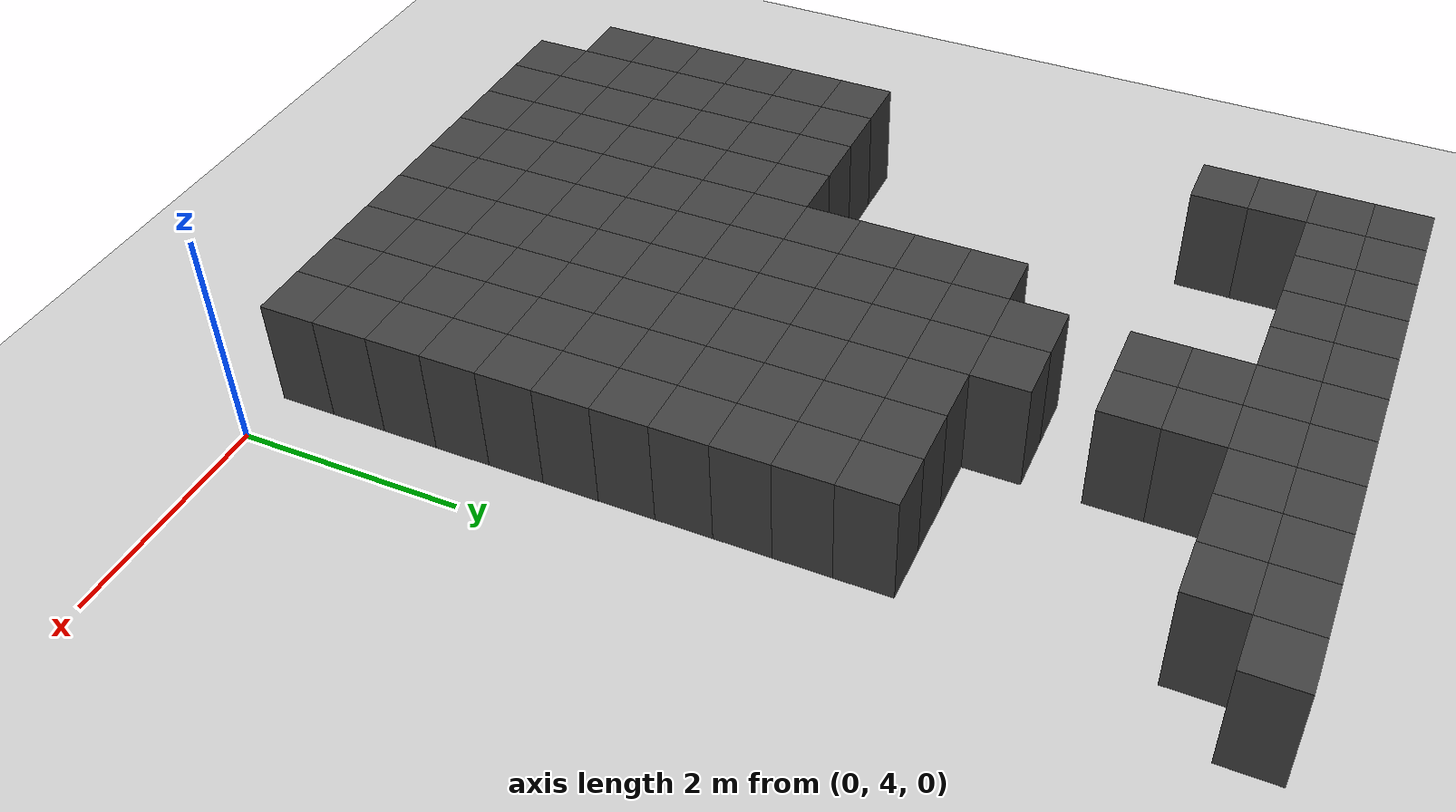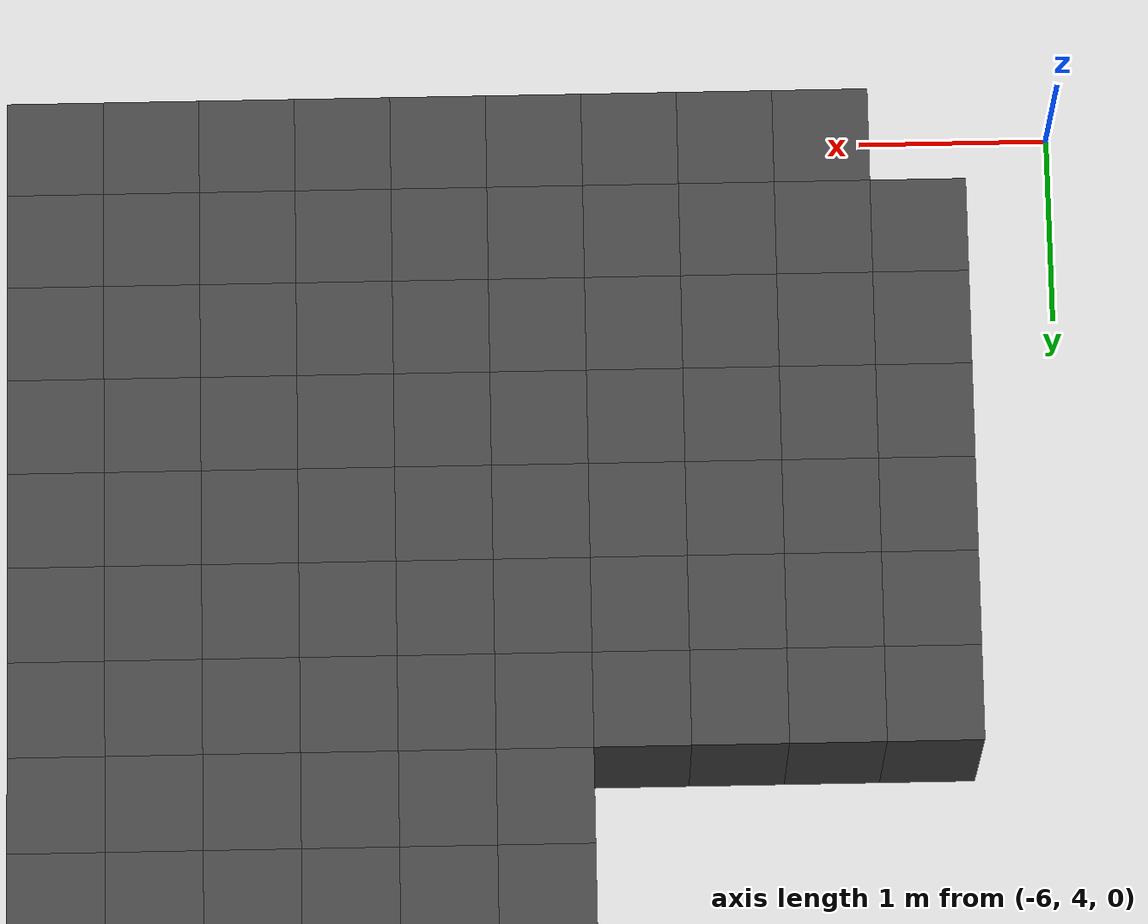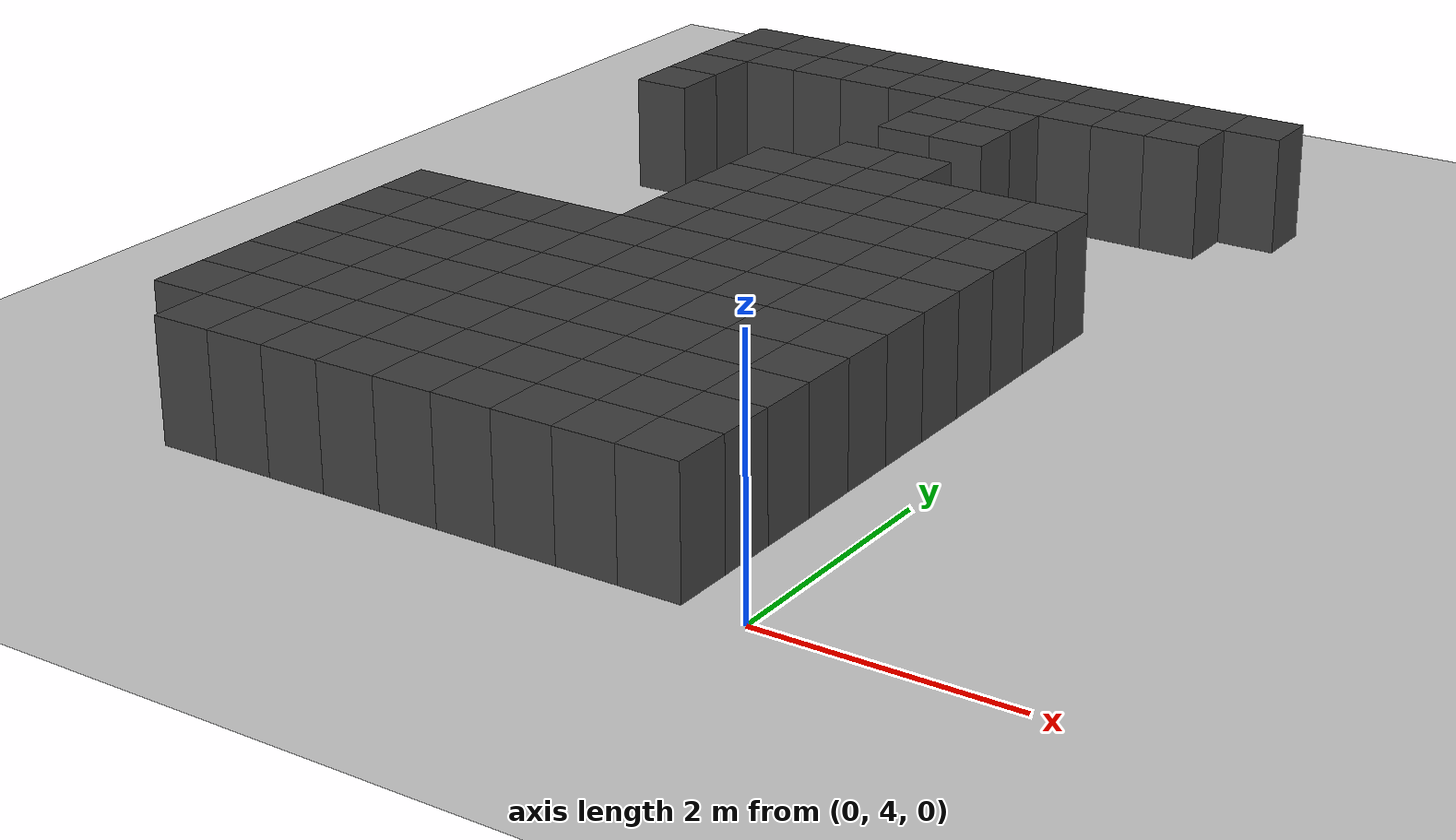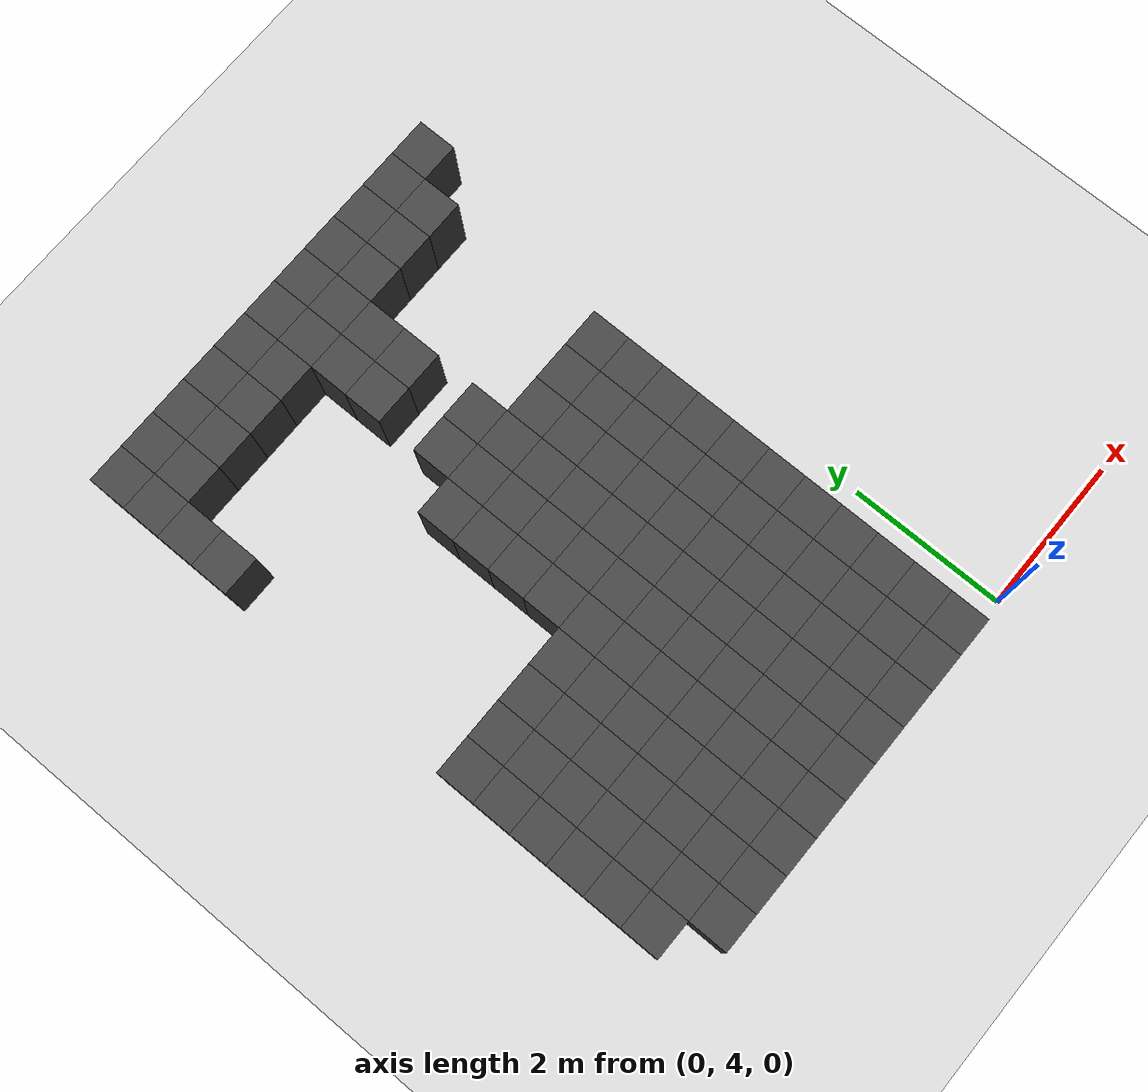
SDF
<sdf version="1.7">
 <world name="map_14547">
  <model name="ground_plane">
   <static>true</static>
   <link name="link">
    <collision name="collision">
     <geometry><plane><normal>0 0 1</normal><size>200 200</size></plane></geometry>
    </collision>
    <visual name="visual">
     <geometry><plane><normal>0 0 1</normal><size>200 200</size></plane></geometry>
     <material><ambient>0.8 0.8 0.8 1</ambient><diffuse>0.8 0.8 0.8 1</diffuse></material>
    </visual>
   </link>
  </model>
  <model name="maze_environment">
   <static>true</static>
   <link name="wall_14">
    <pose>-5.250 12.250 0.500 0 0 0</pose>
    <collision name="col"><geometry><box><size>0.5 0.5 1.0</size></box></geometry></collision>
    <visual name="vis">
     <geometry><box><size>0.5 0.5 1.0</size></box></geometry>
     <material><ambient>0.15 0.15 0.15 1</ambient><diffuse>0.25 0.25 0.25 1</diffuse></material>
    </visual>
   </link>
   <link name="wall_15">
    <pose>-4.750 12.250 0.500 0 0 0</pose>
    <collision name="col"><geometry><box><size>0.5 0.5 1.0</size></box></geometry></collision>
    <visual name="vis">
     <geometry><box><size>0.5 0.5 1.0</size></box></geometry>
     <material><ambient>0.15 0.15 0.15 1</ambient><diffuse>0.25 0.25 0.25 1</diffuse></material>
    </visual>
   </link>
   <link name="wall_16">
    <pose>-4.250 12.250 0.500 0 0 0</pose>
    <collision name="col"><geometry><box><size>0.5 0.5 1.0</size></box></geometry></collision>
    <visual name="vis">
     <geometry><box><size>0.5 0.5 1.0</size></box></geometry>
     <material><ambient>0.15 0.15 0.15 1</ambient><diffuse>0.25 0.25 0.25 1</diffuse></material>
    </visual>
   </link>
   <link name="wall_17">
    <pose>-3.750 12.250 0.500 0 0 0</pose>
    <collision name="col"><geometry><box><size>0.5 0.5 1.0</size></box></geometry></collision>
    <visual name="vis">
     <geometry><box><size>0.5 0.5 1.0</size></box></geometry>
     <material><ambient>0.15 0.15 0.15 1</ambient><diffuse>0.25 0.25 0.25 1</diffuse></material>
    </visual>
   </link>
   <link name="wall_18">
    <pose>-3.250 12.250 0.500 0 0 0</pose>
    <collision name="col"><geometry><box><size>0.5 0.5 1.0</size></box></geometry></collision>
    <visual name="vis">
     <geometry><box><size>0.5 0.5 1.0</size></box></geometry>
     <material><ambient>0.15 0.15 0.15 1</ambient><diffuse>0.25 0.25 0.25 1</diffuse></material>
    </visual>
   </link>
   <link name="wall_19">
    <pose>-2.750 12.250 0.500 0 0 0</pose>
    <collision name="col"><geometry><box><size>0.5 0.5 1.0</size></box></geometry></collision>
    <visual name="vis">
     <geometry><box><size>0.5 0.5 1.0</size></box></geometry>
     <material><ambient>0.15 0.15 0.15 1</ambient><diffuse>0.25 0.25 0.25 1</diffuse></material>
    </visual>
   </link>
   <link name="wall_20">
    <pose>-2.250 12.250 0.500 0 0 0</pose>
    <collision name="col"><geometry><box><size>0.5 0.5 1.0</size></box></geometry></collision>
    <visual name="vis">
     <geometry><box><size>0.5 0.5 1.0</size></box></geometry>
     <material><ambient>0.15 0.15 0.15 1</ambient><diffuse>0.25 0.25 0.25 1</diffuse></material>
    </visual>
   </link>
   <link name="wall_21">
    <pose>-1.750 12.250 0.500 0 0 0</pose>
    <collision name="col"><geometry><box><size>0.5 0.5 1.0</size></box></geometry></collision>
    <visual name="vis">
     <geometry><box><size>0.5 0.5 1.0</size></box></geometry>
     <material><ambient>0.15 0.15 0.15 1</ambient><diffuse>0.25 0.25 0.25 1</diffuse></material>
    </visual>
   </link>
   <link name="wall_22">
    <pose>-1.250 12.250 0.500 0 0 0</pose>
    <collision name="col"><geometry><box><size>0.5 0.5 1.0</size></box></geometry></collision>
    <visual name="vis">
     <geometry><box><size>0.5 0.5 1.0</size></box></geometry>
     <material><ambient>0.15 0.15 0.15 1</ambient><diffuse>0.25 0.25 0.25 1</diffuse></material>
    </visual>
   </link>
   <link name="wall_23">
    <pose>-0.750 12.250 0.500 0 0 0</pose>
    <collision name="col"><geometry><box><size>0.5 0.5 1.0</size></box></geometry></collision>
    <visual name="vis">
     <geometry><box><size>0.5 0.5 1.0</size></box></geometry>
     <material><ambient>0.15 0.15 0.15 1</ambient><diffuse>0.25 0.25 0.25 1</diffuse></material>
    </visual>
   </link>
   <link name="wall_24">
    <pose>-0.250 12.250 0.500 0 0 0</pose>
    <collision name="col"><geometry><box><size>0.5 0.5 1.0</size></box></geometry></collision>
    <visual name="vis">
     <geometry><box><size>0.5 0.5 1.0</size></box></geometry>
     <material><ambient>0.15 0.15 0.15 1</ambient><diffuse>0.25 0.25 0.25 1</diffuse></material>
    </visual>
   </link>
   <link name="wall_61">
    <pose>-5.250 11.750 0.500 0 0 0</pose>
    <collision name="col"><geometry><box><size>0.5 0.5 1.0</size></box></geometry></collision>
    <visual name="vis">
     <geometry><box><size>0.5 0.5 1.0</size></box></geometry>
     <material><ambient>0.15 0.15 0.15 1</ambient><diffuse>0.25 0.25 0.25 1</diffuse></material>
    </visual>
   </link>
   <link name="wall_62">
    <pose>-4.750 11.750 0.500 0 0 0</pose>
    <collision name="col"><geometry><box><size>0.5 0.5 1.0</size></box></geometry></collision>
    <visual name="vis">
     <geometry><box><size>0.5 0.5 1.0</size></box></geometry>
     <material><ambient>0.15 0.15 0.15 1</ambient><diffuse>0.25 0.25 0.25 1</diffuse></material>
    </visual>
   </link>
   <link name="wall_63">
    <pose>-4.250 11.750 0.500 0 0 0</pose>
    <collision name="col"><geometry><box><size>0.5 0.5 1.0</size></box></geometry></collision>
    <visual name="vis">
     <geometry><box><size>0.5 0.5 1.0</size></box></geometry>
     <material><ambient>0.15 0.15 0.15 1</ambient><diffuse>0.25 0.25 0.25 1</diffuse></material>
    </visual>
   </link>
   <link name="wall_64">
    <pose>-3.750 11.750 0.500 0 0 0</pose>
    <collision name="col"><geometry><box><size>0.5 0.5 1.0</size></box></geometry></collision>
    <visual name="vis">
     <geometry><box><size>0.5 0.5 1.0</size></box></geometry>
     <material><ambient>0.15 0.15 0.15 1</ambient><diffuse>0.25 0.25 0.25 1</diffuse></material>
    </visual>
   </link>
   <link name="wall_65">
    <pose>-3.250 11.750 0.500 0 0 0</pose>
    <collision name="col"><geometry><box><size>0.5 0.5 1.0</size></box></geometry></collision>
    <visual name="vis">
     <geometry><box><size>0.5 0.5 1.0</size></box></geometry>
     <material><ambient>0.15 0.15 0.15 1</ambient><diffuse>0.25 0.25 0.25 1</diffuse></material>
    </visual>
   </link>
   <link name="wall_66">
    <pose>-2.750 11.750 0.500 0 0 0</pose>
    <collision name="col"><geometry><box><size>0.5 0.5 1.0</size></box></geometry></collision>
    <visual name="vis">
     <geometry><box><size>0.5 0.5 1.0</size></box></geometry>
     <material><ambient>0.15 0.15 0.15 1</ambient><diffuse>0.25 0.25 0.25 1</diffuse></material>
    </visual>
   </link>
   <link name="wall_67">
    <pose>-2.250 11.750 0.500 0 0 0</pose>
    <collision name="col"><geometry><box><size>0.5 0.5 1.0</size></box></geometry></collision>
    <visual name="vis">
     <geometry><box><size>0.5 0.5 1.0</size></box></geometry>
     <material><ambient>0.15 0.15 0.15 1</ambient><diffuse>0.25 0.25 0.25 1</diffuse></material>
    </visual>
   </link>
   <link name="wall_68">
    <pose>-1.750 11.750 0.500 0 0 0</pose>
    <collision name="col"><geometry><box><size>0.5 0.5 1.0</size></box></geometry></collision>
    <visual name="vis">
     <geometry><box><size>0.5 0.5 1.0</size></box></geometry>
     <material><ambient>0.15 0.15 0.15 1</ambient><diffuse>0.25 0.25 0.25 1</diffuse></material>
    </visual>
   </link>
   <link name="wall_69">
    <pose>-1.250 11.750 0.500 0 0 0</pose>
    <collision name="col"><geometry><box><size>0.5 0.5 1.0</size></box></geometry></collision>
    <visual name="vis">
     <geometry><box><size>0.5 0.5 1.0</size></box></geometry>
     <material><ambient>0.15 0.15 0.15 1</ambient><diffuse>0.25 0.25 0.25 1</diffuse></material>
    </visual>
   </link>
   <link name="wall_70">
    <pose>-0.750 11.750 0.500 0 0 0</pose>
    <collision name="col"><geometry><box><size>0.5 0.5 1.0</size></box></geometry></collision>
    <visual name="vis">
     <geometry><box><size>0.5 0.5 1.0</size></box></geometry>
     <material><ambient>0.15 0.15 0.15 1</ambient><diffuse>0.25 0.25 0.25 1</diffuse></material>
    </visual>
   </link>
   <link name="wall_101">
    <pose>-5.250 11.250 0.500 0 0 0</pose>
    <collision name="col"><geometry><box><size>0.5 0.5 1.0</size></box></geometry></collision>
    <visual name="vis">
     <geometry><box><size>0.5 0.5 1.0</size></box></geometry>
     <material><ambient>0.15 0.15 0.15 1</ambient><diffuse>0.25 0.25 0.25 1</diffuse></material>
    </visual>
   </link>
   <link name="wall_102">
    <pose>-2.750 11.250 0.500 0 0 0</pose>
    <collision name="col"><geometry><box><size>0.5 0.5 1.0</size></box></geometry></collision>
    <visual name="vis">
     <geometry><box><size>0.5 0.5 1.0</size></box></geometry>
     <material><ambient>0.15 0.15 0.15 1</ambient><diffuse>0.25 0.25 0.25 1</diffuse></material>
    </visual>
   </link>
   <link name="wall_103">
    <pose>-2.250 11.250 0.500 0 0 0</pose>
    <collision name="col"><geometry><box><size>0.5 0.5 1.0</size></box></geometry></collision>
    <visual name="vis">
     <geometry><box><size>0.5 0.5 1.0</size></box></geometry>
     <material><ambient>0.15 0.15 0.15 1</ambient><diffuse>0.25 0.25 0.25 1</diffuse></material>
    </visual>
   </link>
   <link name="wall_133">
    <pose>-5.250 10.750 0.500 0 0 0</pose>
    <collision name="col"><geometry><box><size>0.5 0.5 1.0</size></box></geometry></collision>
    <visual name="vis">
     <geometry><box><size>0.5 0.5 1.0</size></box></geometry>
     <material><ambient>0.15 0.15 0.15 1</ambient><diffuse>0.25 0.25 0.25 1</diffuse></material>
    </visual>
   </link>
   <link name="wall_134">
    <pose>-2.750 10.750 0.500 0 0 0</pose>
    <collision name="col"><geometry><box><size>0.5 0.5 1.0</size></box></geometry></collision>
    <visual name="vis">
     <geometry><box><size>0.5 0.5 1.0</size></box></geometry>
     <material><ambient>0.15 0.15 0.15 1</ambient><diffuse>0.25 0.25 0.25 1</diffuse></material>
    </visual>
   </link>
   <link name="wall_135">
    <pose>-2.250 10.750 0.500 0 0 0</pose>
    <collision name="col"><geometry><box><size>0.5 0.5 1.0</size></box></geometry></collision>
    <visual name="vis">
     <geometry><box><size>0.5 0.5 1.0</size></box></geometry>
     <material><ambient>0.15 0.15 0.15 1</ambient><diffuse>0.25 0.25 0.25 1</diffuse></material>
    </visual>
   </link>
   <link name="wall_194">
    <pose>-2.750 9.750 0.500 0 0 0</pose>
    <collision name="col"><geometry><box><size>0.5 0.5 1.0</size></box></geometry></collision>
    <visual name="vis">
     <geometry><box><size>0.5 0.5 1.0</size></box></geometry>
     <material><ambient>0.15 0.15 0.15 1</ambient><diffuse>0.25 0.25 0.25 1</diffuse></material>
    </visual>
   </link>
   <link name="wall_195">
    <pose>-2.250 9.750 0.500 0 0 0</pose>
    <collision name="col"><geometry><box><size>0.5 0.5 1.0</size></box></geometry></collision>
    <visual name="vis">
     <geometry><box><size>0.5 0.5 1.0</size></box></geometry>
     <material><ambient>0.15 0.15 0.15 1</ambient><diffuse>0.25 0.25 0.25 1</diffuse></material>
    </visual>
   </link>
   <link name="wall_223">
    <pose>-3.250 9.250 0.500 0 0 0</pose>
    <collision name="col"><geometry><box><size>0.5 0.5 1.0</size></box></geometry></collision>
    <visual name="vis">
     <geometry><box><size>0.5 0.5 1.0</size></box></geometry>
     <material><ambient>0.15 0.15 0.15 1</ambient><diffuse>0.25 0.25 0.25 1</diffuse></material>
    </visual>
   </link>
   <link name="wall_224">
    <pose>-2.750 9.250 0.500 0 0 0</pose>
    <collision name="col"><geometry><box><size>0.5 0.5 1.0</size></box></geometry></collision>
    <visual name="vis">
     <geometry><box><size>0.5 0.5 1.0</size></box></geometry>
     <material><ambient>0.15 0.15 0.15 1</ambient><diffuse>0.25 0.25 0.25 1</diffuse></material>
    </visual>
   </link>
   <link name="wall_225">
    <pose>-2.250 9.250 0.500 0 0 0</pose>
    <collision name="col"><geometry><box><size>0.5 0.5 1.0</size></box></geometry></collision>
    <visual name="vis">
     <geometry><box><size>0.5 0.5 1.0</size></box></geometry>
     <material><ambient>0.15 0.15 0.15 1</ambient><diffuse>0.25 0.25 0.25 1</diffuse></material>
    </visual>
   </link>
   <link name="wall_226">
    <pose>-1.750 9.250 0.500 0 0 0</pose>
    <collision name="col"><geometry><box><size>0.5 0.5 1.0</size></box></geometry></collision>
    <visual name="vis">
     <geometry><box><size>0.5 0.5 1.0</size></box></geometry>
     <material><ambient>0.15 0.15 0.15 1</ambient><diffuse>0.25 0.25 0.25 1</diffuse></material>
    </visual>
   </link>
   <link name="wall_227">
    <pose>-1.250 9.250 0.500 0 0 0</pose>
    <collision name="col"><geometry><box><size>0.5 0.5 1.0</size></box></geometry></collision>
    <visual name="vis">
     <geometry><box><size>0.5 0.5 1.0</size></box></geometry>
     <material><ambient>0.15 0.15 0.15 1</ambient><diffuse>0.25 0.25 0.25 1</diffuse></material>
    </visual>
   </link>
   <link name="wall_228">
    <pose>-0.750 9.250 0.500 0 0 0</pose>
    <collision name="col"><geometry><box><size>0.5 0.5 1.0</size></box></geometry></collision>
    <visual name="vis">
     <geometry><box><size>0.5 0.5 1.0</size></box></geometry>
     <material><ambient>0.15 0.15 0.15 1</ambient><diffuse>0.25 0.25 0.25 1</diffuse></material>
    </visual>
   </link>
   <link name="wall_253">
    <pose>-3.250 8.750 0.500 0 0 0</pose>
    <collision name="col"><geometry><box><size>0.5 0.5 1.0</size></box></geometry></collision>
    <visual name="vis">
     <geometry><box><size>0.5 0.5 1.0</size></box></geometry>
     <material><ambient>0.15 0.15 0.15 1</ambient><diffuse>0.25 0.25 0.25 1</diffuse></material>
    </visual>
   </link>
   <link name="wall_254">
    <pose>-2.750 8.750 0.500 0 0 0</pose>
    <collision name="col"><geometry><box><size>0.5 0.5 1.0</size></box></geometry></collision>
    <visual name="vis">
     <geometry><box><size>0.5 0.5 1.0</size></box></geometry>
     <material><ambient>0.15 0.15 0.15 1</ambient><diffuse>0.25 0.25 0.25 1</diffuse></material>
    </visual>
   </link>
   <link name="wall_255">
    <pose>-2.250 8.750 0.500 0 0 0</pose>
    <collision name="col"><geometry><box><size>0.5 0.5 1.0</size></box></geometry></collision>
    <visual name="vis">
     <geometry><box><size>0.5 0.5 1.0</size></box></geometry>
     <material><ambient>0.15 0.15 0.15 1</ambient><diffuse>0.25 0.25 0.25 1</diffuse></material>
    </visual>
   </link>
   <link name="wall_256">
    <pose>-1.750 8.750 0.500 0 0 0</pose>
    <collision name="col"><geometry><box><size>0.5 0.5 1.0</size></box></geometry></collision>
    <visual name="vis">
     <geometry><box><size>0.5 0.5 1.0</size></box></geometry>
     <material><ambient>0.15 0.15 0.15 1</ambient><diffuse>0.25 0.25 0.25 1</diffuse></material>
    </visual>
   </link>
   <link name="wall_257">
    <pose>-1.250 8.750 0.500 0 0 0</pose>
    <collision name="col"><geometry><box><size>0.5 0.5 1.0</size></box></geometry></collision>
    <visual name="vis">
     <geometry><box><size>0.5 0.5 1.0</size></box></geometry>
     <material><ambient>0.15 0.15 0.15 1</ambient><diffuse>0.25 0.25 0.25 1</diffuse></material>
    </visual>
   </link>
   <link name="wall_258">
    <pose>-0.750 8.750 0.500 0 0 0</pose>
    <collision name="col"><geometry><box><size>0.5 0.5 1.0</size></box></geometry></collision>
    <visual name="vis">
     <geometry><box><size>0.5 0.5 1.0</size></box></geometry>
     <material><ambient>0.15 0.15 0.15 1</ambient><diffuse>0.25 0.25 0.25 1</diffuse></material>
    </visual>
   </link>
   <link name="wall_275">
    <pose>-3.250 8.250 0.500 0 0 0</pose>
    <collision name="col"><geometry><box><size>0.5 0.5 1.0</size></box></geometry></collision>
    <visual name="vis">
     <geometry><box><size>0.5 0.5 1.0</size></box></geometry>
     <material><ambient>0.15 0.15 0.15 1</ambient><diffuse>0.25 0.25 0.25 1</diffuse></material>
    </visual>
   </link>
   <link name="wall_276">
    <pose>-2.750 8.250 0.500 0 0 0</pose>
    <collision name="col"><geometry><box><size>0.5 0.5 1.0</size></box></geometry></collision>
    <visual name="vis">
     <geometry><box><size>0.5 0.5 1.0</size></box></geometry>
     <material><ambient>0.15 0.15 0.15 1</ambient><diffuse>0.25 0.25 0.25 1</diffuse></material>
    </visual>
   </link>
   <link name="wall_277">
    <pose>-2.250 8.250 0.500 0 0 0</pose>
    <collision name="col"><geometry><box><size>0.5 0.5 1.0</size></box></geometry></collision>
    <visual name="vis">
     <geometry><box><size>0.5 0.5 1.0</size></box></geometry>
     <material><ambient>0.15 0.15 0.15 1</ambient><diffuse>0.25 0.25 0.25 1</diffuse></material>
    </visual>
   </link>
   <link name="wall_278">
    <pose>-1.750 8.250 0.500 0 0 0</pose>
    <collision name="col"><geometry><box><size>0.5 0.5 1.0</size></box></geometry></collision>
    <visual name="vis">
     <geometry><box><size>0.5 0.5 1.0</size></box></geometry>
     <material><ambient>0.15 0.15 0.15 1</ambient><diffuse>0.25 0.25 0.25 1</diffuse></material>
    </visual>
   </link>
   <link name="wall_279">
    <pose>-1.250 8.250 0.500 0 0 0</pose>
    <collision name="col"><geometry><box><size>0.5 0.5 1.0</size></box></geometry></collision>
    <visual name="vis">
     <geometry><box><size>0.5 0.5 1.0</size></box></geometry>
     <material><ambient>0.15 0.15 0.15 1</ambient><diffuse>0.25 0.25 0.25 1</diffuse></material>
    </visual>
   </link>
   <link name="wall_280">
    <pose>-0.750 8.250 0.500 0 0 0</pose>
    <collision name="col"><geometry><box><size>0.5 0.5 1.0</size></box></geometry></collision>
    <visual name="vis">
     <geometry><box><size>0.5 0.5 1.0</size></box></geometry>
     <material><ambient>0.15 0.15 0.15 1</ambient><diffuse>0.25 0.25 0.25 1</diffuse></material>
    </visual>
   </link>
   <link name="wall_294">
    <pose>-3.250 7.750 0.500 0 0 0</pose>
    <collision name="col"><geometry><box><size>0.5 0.5 1.0</size></box></geometry></collision>
    <visual name="vis">
     <geometry><box><size>0.5 0.5 1.0</size></box></geometry>
     <material><ambient>0.15 0.15 0.15 1</ambient><diffuse>0.25 0.25 0.25 1</diffuse></material>
    </visual>
   </link>
   <link name="wall_295">
    <pose>-2.750 7.750 0.500 0 0 0</pose>
    <collision name="col"><geometry><box><size>0.5 0.5 1.0</size></box></geometry></collision>
    <visual name="vis">
     <geometry><box><size>0.5 0.5 1.0</size></box></geometry>
     <material><ambient>0.15 0.15 0.15 1</ambient><diffuse>0.25 0.25 0.25 1</diffuse></material>
    </visual>
   </link>
   <link name="wall_296">
    <pose>-2.250 7.750 0.500 0 0 0</pose>
    <collision name="col"><geometry><box><size>0.5 0.5 1.0</size></box></geometry></collision>
    <visual name="vis">
     <geometry><box><size>0.5 0.5 1.0</size></box></geometry>
     <material><ambient>0.15 0.15 0.15 1</ambient><diffuse>0.25 0.25 0.25 1</diffuse></material>
    </visual>
   </link>
   <link name="wall_297">
    <pose>-1.750 7.750 0.500 0 0 0</pose>
    <collision name="col"><geometry><box><size>0.5 0.5 1.0</size></box></geometry></collision>
    <visual name="vis">
     <geometry><box><size>0.5 0.5 1.0</size></box></geometry>
     <material><ambient>0.15 0.15 0.15 1</ambient><diffuse>0.25 0.25 0.25 1</diffuse></material>
    </visual>
   </link>
   <link name="wall_298">
    <pose>-1.250 7.750 0.500 0 0 0</pose>
    <collision name="col"><geometry><box><size>0.5 0.5 1.0</size></box></geometry></collision>
    <visual name="vis">
     <geometry><box><size>0.5 0.5 1.0</size></box></geometry>
     <material><ambient>0.15 0.15 0.15 1</ambient><diffuse>0.25 0.25 0.25 1</diffuse></material>
    </visual>
   </link>
   <link name="wall_299">
    <pose>-0.750 7.750 0.500 0 0 0</pose>
    <collision name="col"><geometry><box><size>0.5 0.5 1.0</size></box></geometry></collision>
    <visual name="vis">
     <geometry><box><size>0.5 0.5 1.0</size></box></geometry>
     <material><ambient>0.15 0.15 0.15 1</ambient><diffuse>0.25 0.25 0.25 1</diffuse></material>
    </visual>
   </link>
   <link name="wall_318">
    <pose>-5.250 7.250 0.500 0 0 0</pose>
    <collision name="col"><geometry><box><size>0.5 0.5 1.0</size></box></geometry></collision>
    <visual name="vis">
     <geometry><box><size>0.5 0.5 1.0</size></box></geometry>
     <material><ambient>0.15 0.15 0.15 1</ambient><diffuse>0.25 0.25 0.25 1</diffuse></material>
    </visual>
   </link>
   <link name="wall_319">
    <pose>-4.750 7.250 0.500 0 0 0</pose>
    <collision name="col"><geometry><box><size>0.5 0.5 1.0</size></box></geometry></collision>
    <visual name="vis">
     <geometry><box><size>0.5 0.5 1.0</size></box></geometry>
     <material><ambient>0.15 0.15 0.15 1</ambient><diffuse>0.25 0.25 0.25 1</diffuse></material>
    </visual>
   </link>
   <link name="wall_320">
    <pose>-4.250 7.250 0.500 0 0 0</pose>
    <collision name="col"><geometry><box><size>0.5 0.5 1.0</size></box></geometry></collision>
    <visual name="vis">
     <geometry><box><size>0.5 0.5 1.0</size></box></geometry>
     <material><ambient>0.15 0.15 0.15 1</ambient><diffuse>0.25 0.25 0.25 1</diffuse></material>
    </visual>
   </link>
   <link name="wall_321">
    <pose>-3.750 7.250 0.500 0 0 0</pose>
    <collision name="col"><geometry><box><size>0.5 0.5 1.0</size></box></geometry></collision>
    <visual name="vis">
     <geometry><box><size>0.5 0.5 1.0</size></box></geometry>
     <material><ambient>0.15 0.15 0.15 1</ambient><diffuse>0.25 0.25 0.25 1</diffuse></material>
    </visual>
   </link>
   <link name="wall_322">
    <pose>-3.250 7.250 0.500 0 0 0</pose>
    <collision name="col"><geometry><box><size>0.5 0.5 1.0</size></box></geometry></collision>
    <visual name="vis">
     <geometry><box><size>0.5 0.5 1.0</size></box></geometry>
     <material><ambient>0.15 0.15 0.15 1</ambient><diffuse>0.25 0.25 0.25 1</diffuse></material>
    </visual>
   </link>
   <link name="wall_323">
    <pose>-2.750 7.250 0.500 0 0 0</pose>
    <collision name="col"><geometry><box><size>0.5 0.5 1.0</size></box></geometry></collision>
    <visual name="vis">
     <geometry><box><size>0.5 0.5 1.0</size></box></geometry>
     <material><ambient>0.15 0.15 0.15 1</ambient><diffuse>0.25 0.25 0.25 1</diffuse></material>
    </visual>
   </link>
   <link name="wall_324">
    <pose>-2.250 7.250 0.500 0 0 0</pose>
    <collision name="col"><geometry><box><size>0.5 0.5 1.0</size></box></geometry></collision>
    <visual name="vis">
     <geometry><box><size>0.5 0.5 1.0</size></box></geometry>
     <material><ambient>0.15 0.15 0.15 1</ambient><diffuse>0.25 0.25 0.25 1</diffuse></material>
    </visual>
   </link>
   <link name="wall_325">
    <pose>-1.750 7.250 0.500 0 0 0</pose>
    <collision name="col"><geometry><box><size>0.5 0.5 1.0</size></box></geometry></collision>
    <visual name="vis">
     <geometry><box><size>0.5 0.5 1.0</size></box></geometry>
     <material><ambient>0.15 0.15 0.15 1</ambient><diffuse>0.25 0.25 0.25 1</diffuse></material>
    </visual>
   </link>
   <link name="wall_326">
    <pose>-1.250 7.250 0.500 0 0 0</pose>
    <collision name="col"><geometry><box><size>0.5 0.5 1.0</size></box></geometry></collision>
    <visual name="vis">
     <geometry><box><size>0.5 0.5 1.0</size></box></geometry>
     <material><ambient>0.15 0.15 0.15 1</ambient><diffuse>0.25 0.25 0.25 1</diffuse></material>
    </visual>
   </link>
   <link name="wall_327">
    <pose>-0.750 7.250 0.500 0 0 0</pose>
    <collision name="col"><geometry><box><size>0.5 0.5 1.0</size></box></geometry></collision>
    <visual name="vis">
     <geometry><box><size>0.5 0.5 1.0</size></box></geometry>
     <material><ambient>0.15 0.15 0.15 1</ambient><diffuse>0.25 0.25 0.25 1</diffuse></material>
    </visual>
   </link>
   <link name="wall_342">
    <pose>-5.250 6.750 0.500 0 0 0</pose>
    <collision name="col"><geometry><box><size>0.5 0.5 1.0</size></box></geometry></collision>
    <visual name="vis">
     <geometry><box><size>0.5 0.5 1.0</size></box></geometry>
     <material><ambient>0.15 0.15 0.15 1</ambient><diffuse>0.25 0.25 0.25 1</diffuse></material>
    </visual>
   </link>
   <link name="wall_343">
    <pose>-4.750 6.750 0.500 0 0 0</pose>
    <collision name="col"><geometry><box><size>0.5 0.5 1.0</size></box></geometry></collision>
    <visual name="vis">
     <geometry><box><size>0.5 0.5 1.0</size></box></geometry>
     <material><ambient>0.15 0.15 0.15 1</ambient><diffuse>0.25 0.25 0.25 1</diffuse></material>
    </visual>
   </link>
   <link name="wall_344">
    <pose>-4.250 6.750 0.500 0 0 0</pose>
    <collision name="col"><geometry><box><size>0.5 0.5 1.0</size></box></geometry></collision>
    <visual name="vis">
     <geometry><box><size>0.5 0.5 1.0</size></box></geometry>
     <material><ambient>0.15 0.15 0.15 1</ambient><diffuse>0.25 0.25 0.25 1</diffuse></material>
    </visual>
   </link>
   <link name="wall_345">
    <pose>-3.750 6.750 0.500 0 0 0</pose>
    <collision name="col"><geometry><box><size>0.5 0.5 1.0</size></box></geometry></collision>
    <visual name="vis">
     <geometry><box><size>0.5 0.5 1.0</size></box></geometry>
     <material><ambient>0.15 0.15 0.15 1</ambient><diffuse>0.25 0.25 0.25 1</diffuse></material>
    </visual>
   </link>
   <link name="wall_346">
    <pose>-3.250 6.750 0.500 0 0 0</pose>
    <collision name="col"><geometry><box><size>0.5 0.5 1.0</size></box></geometry></collision>
    <visual name="vis">
     <geometry><box><size>0.5 0.5 1.0</size></box></geometry>
     <material><ambient>0.15 0.15 0.15 1</ambient><diffuse>0.25 0.25 0.25 1</diffuse></material>
    </visual>
   </link>
   <link name="wall_347">
    <pose>-2.750 6.750 0.500 0 0 0</pose>
    <collision name="col"><geometry><box><size>0.5 0.5 1.0</size></box></geometry></collision>
    <visual name="vis">
     <geometry><box><size>0.5 0.5 1.0</size></box></geometry>
     <material><ambient>0.15 0.15 0.15 1</ambient><diffuse>0.25 0.25 0.25 1</diffuse></material>
    </visual>
   </link>
   <link name="wall_348">
    <pose>-2.250 6.750 0.500 0 0 0</pose>
    <collision name="col"><geometry><box><size>0.5 0.5 1.0</size></box></geometry></collision>
    <visual name="vis">
     <geometry><box><size>0.5 0.5 1.0</size></box></geometry>
     <material><ambient>0.15 0.15 0.15 1</ambient><diffuse>0.25 0.25 0.25 1</diffuse></material>
    </visual>
   </link>
   <link name="wall_349">
    <pose>-1.750 6.750 0.500 0 0 0</pose>
    <collision name="col"><geometry><box><size>0.5 0.5 1.0</size></box></geometry></collision>
    <visual name="vis">
     <geometry><box><size>0.5 0.5 1.0</size></box></geometry>
     <material><ambient>0.15 0.15 0.15 1</ambient><diffuse>0.25 0.25 0.25 1</diffuse></material>
    </visual>
   </link>
   <link name="wall_350">
    <pose>-1.250 6.750 0.500 0 0 0</pose>
    <collision name="col"><geometry><box><size>0.5 0.5 1.0</size></box></geometry></collision>
    <visual name="vis">
     <geometry><box><size>0.5 0.5 1.0</size></box></geometry>
     <material><ambient>0.15 0.15 0.15 1</ambient><diffuse>0.25 0.25 0.25 1</diffuse></material>
    </visual>
   </link>
   <link name="wall_351">
    <pose>-0.750 6.750 0.500 0 0 0</pose>
    <collision name="col"><geometry><box><size>0.5 0.5 1.0</size></box></geometry></collision>
    <visual name="vis">
     <geometry><box><size>0.5 0.5 1.0</size></box></geometry>
     <material><ambient>0.15 0.15 0.15 1</ambient><diffuse>0.25 0.25 0.25 1</diffuse></material>
    </visual>
   </link>
   <link name="wall_370">
    <pose>-5.250 6.250 0.500 0 0 0</pose>
    <collision name="col"><geometry><box><size>0.5 0.5 1.0</size></box></geometry></collision>
    <visual name="vis">
     <geometry><box><size>0.5 0.5 1.0</size></box></geometry>
     <material><ambient>0.15 0.15 0.15 1</ambient><diffuse>0.25 0.25 0.25 1</diffuse></material>
    </visual>
   </link>
   <link name="wall_371">
    <pose>-4.750 6.250 0.500 0 0 0</pose>
    <collision name="col"><geometry><box><size>0.5 0.5 1.0</size></box></geometry></collision>
    <visual name="vis">
     <geometry><box><size>0.5 0.5 1.0</size></box></geometry>
     <material><ambient>0.15 0.15 0.15 1</ambient><diffuse>0.25 0.25 0.25 1</diffuse></material>
    </visual>
   </link>
   <link name="wall_372">
    <pose>-4.250 6.250 0.500 0 0 0</pose>
    <collision name="col"><geometry><box><size>0.5 0.5 1.0</size></box></geometry></collision>
    <visual name="vis">
     <geometry><box><size>0.5 0.5 1.0</size></box></geometry>
     <material><ambient>0.15 0.15 0.15 1</ambient><diffuse>0.25 0.25 0.25 1</diffuse></material>
    </visual>
   </link>
   <link name="wall_373">
    <pose>-3.750 6.250 0.500 0 0 0</pose>
    <collision name="col"><geometry><box><size>0.5 0.5 1.0</size></box></geometry></collision>
    <visual name="vis">
     <geometry><box><size>0.5 0.5 1.0</size></box></geometry>
     <material><ambient>0.15 0.15 0.15 1</ambient><diffuse>0.25 0.25 0.25 1</diffuse></material>
    </visual>
   </link>
   <link name="wall_374">
    <pose>-3.250 6.250 0.500 0 0 0</pose>
    <collision name="col"><geometry><box><size>0.5 0.5 1.0</size></box></geometry></collision>
    <visual name="vis">
     <geometry><box><size>0.5 0.5 1.0</size></box></geometry>
     <material><ambient>0.15 0.15 0.15 1</ambient><diffuse>0.25 0.25 0.25 1</diffuse></material>
    </visual>
   </link>
   <link name="wall_375">
    <pose>-2.750 6.250 0.500 0 0 0</pose>
    <collision name="col"><geometry><box><size>0.5 0.5 1.0</size></box></geometry></collision>
    <visual name="vis">
     <geometry><box><size>0.5 0.5 1.0</size></box></geometry>
     <material><ambient>0.15 0.15 0.15 1</ambient><diffuse>0.25 0.25 0.25 1</diffuse></material>
    </visual>
   </link>
   <link name="wall_376">
    <pose>-2.250 6.250 0.500 0 0 0</pose>
    <collision name="col"><geometry><box><size>0.5 0.5 1.0</size></box></geometry></collision>
    <visual name="vis">
     <geometry><box><size>0.5 0.5 1.0</size></box></geometry>
     <material><ambient>0.15 0.15 0.15 1</ambient><diffuse>0.25 0.25 0.25 1</diffuse></material>
    </visual>
   </link>
   <link name="wall_377">
    <pose>-1.750 6.250 0.500 0 0 0</pose>
    <collision name="col"><geometry><box><size>0.5 0.5 1.0</size></box></geometry></collision>
    <visual name="vis">
     <geometry><box><size>0.5 0.5 1.0</size></box></geometry>
     <material><ambient>0.15 0.15 0.15 1</ambient><diffuse>0.25 0.25 0.25 1</diffuse></material>
    </visual>
   </link>
   <link name="wall_378">
    <pose>-1.250 6.250 0.500 0 0 0</pose>
    <collision name="col"><geometry><box><size>0.5 0.5 1.0</size></box></geometry></collision>
    <visual name="vis">
     <geometry><box><size>0.5 0.5 1.0</size></box></geometry>
     <material><ambient>0.15 0.15 0.15 1</ambient><diffuse>0.25 0.25 0.25 1</diffuse></material>
    </visual>
   </link>
   <link name="wall_379">
    <pose>-0.750 6.250 0.500 0 0 0</pose>
    <collision name="col"><geometry><box><size>0.5 0.5 1.0</size></box></geometry></collision>
    <visual name="vis">
     <geometry><box><size>0.5 0.5 1.0</size></box></geometry>
     <material><ambient>0.15 0.15 0.15 1</ambient><diffuse>0.25 0.25 0.25 1</diffuse></material>
    </visual>
   </link>
   <link name="wall_394">
    <pose>-5.250 5.750 0.500 0 0 0</pose>
    <collision name="col"><geometry><box><size>0.5 0.5 1.0</size></box></geometry></collision>
    <visual name="vis">
     <geometry><box><size>0.5 0.5 1.0</size></box></geometry>
     <material><ambient>0.15 0.15 0.15 1</ambient><diffuse>0.25 0.25 0.25 1</diffuse></material>
    </visual>
   </link>
   <link name="wall_395">
    <pose>-4.750 5.750 0.500 0 0 0</pose>
    <collision name="col"><geometry><box><size>0.5 0.5 1.0</size></box></geometry></collision>
    <visual name="vis">
     <geometry><box><size>0.5 0.5 1.0</size></box></geometry>
     <material><ambient>0.15 0.15 0.15 1</ambient><diffuse>0.25 0.25 0.25 1</diffuse></material>
    </visual>
   </link>
   <link name="wall_396">
    <pose>-4.250 5.750 0.500 0 0 0</pose>
    <collision name="col"><geometry><box><size>0.5 0.5 1.0</size></box></geometry></collision>
    <visual name="vis">
     <geometry><box><size>0.5 0.5 1.0</size></box></geometry>
     <material><ambient>0.15 0.15 0.15 1</ambient><diffuse>0.25 0.25 0.25 1</diffuse></material>
    </visual>
   </link>
   <link name="wall_397">
    <pose>-3.750 5.750 0.500 0 0 0</pose>
    <collision name="col"><geometry><box><size>0.5 0.5 1.0</size></box></geometry></collision>
    <visual name="vis">
     <geometry><box><size>0.5 0.5 1.0</size></box></geometry>
     <material><ambient>0.15 0.15 0.15 1</ambient><diffuse>0.25 0.25 0.25 1</diffuse></material>
    </visual>
   </link>
   <link name="wall_398">
    <pose>-3.250 5.750 0.500 0 0 0</pose>
    <collision name="col"><geometry><box><size>0.5 0.5 1.0</size></box></geometry></collision>
    <visual name="vis">
     <geometry><box><size>0.5 0.5 1.0</size></box></geometry>
     <material><ambient>0.15 0.15 0.15 1</ambient><diffuse>0.25 0.25 0.25 1</diffuse></material>
    </visual>
   </link>
   <link name="wall_399">
    <pose>-2.750 5.750 0.500 0 0 0</pose>
    <collision name="col"><geometry><box><size>0.5 0.5 1.0</size></box></geometry></collision>
    <visual name="vis">
     <geometry><box><size>0.5 0.5 1.0</size></box></geometry>
     <material><ambient>0.15 0.15 0.15 1</ambient><diffuse>0.25 0.25 0.25 1</diffuse></material>
    </visual>
   </link>
   <link name="wall_400">
    <pose>-2.250 5.750 0.500 0 0 0</pose>
    <collision name="col"><geometry><box><size>0.5 0.5 1.0</size></box></geometry></collision>
    <visual name="vis">
     <geometry><box><size>0.5 0.5 1.0</size></box></geometry>
     <material><ambient>0.15 0.15 0.15 1</ambient><diffuse>0.25 0.25 0.25 1</diffuse></material>
    </visual>
   </link>
   <link name="wall_401">
    <pose>-1.750 5.750 0.500 0 0 0</pose>
    <collision name="col"><geometry><box><size>0.5 0.5 1.0</size></box></geometry></collision>
    <visual name="vis">
     <geometry><box><size>0.5 0.5 1.0</size></box></geometry>
     <material><ambient>0.15 0.15 0.15 1</ambient><diffuse>0.25 0.25 0.25 1</diffuse></material>
    </visual>
   </link>
   <link name="wall_402">
    <pose>-1.250 5.750 0.500 0 0 0</pose>
    <collision name="col"><geometry><box><size>0.5 0.5 1.0</size></box></geometry></collision>
    <visual name="vis">
     <geometry><box><size>0.5 0.5 1.0</size></box></geometry>
     <material><ambient>0.15 0.15 0.15 1</ambient><diffuse>0.25 0.25 0.25 1</diffuse></material>
    </visual>
   </link>
   <link name="wall_403">
    <pose>-0.750 5.750 0.500 0 0 0</pose>
    <collision name="col"><geometry><box><size>0.5 0.5 1.0</size></box></geometry></collision>
    <visual name="vis">
     <geometry><box><size>0.5 0.5 1.0</size></box></geometry>
     <material><ambient>0.15 0.15 0.15 1</ambient><diffuse>0.25 0.25 0.25 1</diffuse></material>
    </visual>
   </link>
   <link name="wall_422">
    <pose>-5.250 5.250 0.500 0 0 0</pose>
    <collision name="col"><geometry><box><size>0.5 0.5 1.0</size></box></geometry></collision>
    <visual name="vis">
     <geometry><box><size>0.5 0.5 1.0</size></box></geometry>
     <material><ambient>0.15 0.15 0.15 1</ambient><diffuse>0.25 0.25 0.25 1</diffuse></material>
    </visual>
   </link>
   <link name="wall_423">
    <pose>-4.750 5.250 0.500 0 0 0</pose>
    <collision name="col"><geometry><box><size>0.5 0.5 1.0</size></box></geometry></collision>
    <visual name="vis">
     <geometry><box><size>0.5 0.5 1.0</size></box></geometry>
     <material><ambient>0.15 0.15 0.15 1</ambient><diffuse>0.25 0.25 0.25 1</diffuse></material>
    </visual>
   </link>
   <link name="wall_424">
    <pose>-4.250 5.250 0.500 0 0 0</pose>
    <collision name="col"><geometry><box><size>0.5 0.5 1.0</size></box></geometry></collision>
    <visual name="vis">
     <geometry><box><size>0.5 0.5 1.0</size></box></geometry>
     <material><ambient>0.15 0.15 0.15 1</ambient><diffuse>0.25 0.25 0.25 1</diffuse></material>
    </visual>
   </link>
   <link name="wall_425">
    <pose>-3.750 5.250 0.500 0 0 0</pose>
    <collision name="col"><geometry><box><size>0.5 0.5 1.0</size></box></geometry></collision>
    <visual name="vis">
     <geometry><box><size>0.5 0.5 1.0</size></box></geometry>
     <material><ambient>0.15 0.15 0.15 1</ambient><diffuse>0.25 0.25 0.25 1</diffuse></material>
    </visual>
   </link>
   <link name="wall_426">
    <pose>-3.250 5.250 0.500 0 0 0</pose>
    <collision name="col"><geometry><box><size>0.5 0.5 1.0</size></box></geometry></collision>
    <visual name="vis">
     <geometry><box><size>0.5 0.5 1.0</size></box></geometry>
     <material><ambient>0.15 0.15 0.15 1</ambient><diffuse>0.25 0.25 0.25 1</diffuse></material>
    </visual>
   </link>
   <link name="wall_427">
    <pose>-2.750 5.250 0.500 0 0 0</pose>
    <collision name="col"><geometry><box><size>0.5 0.5 1.0</size></box></geometry></collision>
    <visual name="vis">
     <geometry><box><size>0.5 0.5 1.0</size></box></geometry>
     <material><ambient>0.15 0.15 0.15 1</ambient><diffuse>0.25 0.25 0.25 1</diffuse></material>
    </visual>
   </link>
   <link name="wall_428">
    <pose>-2.250 5.250 0.500 0 0 0</pose>
    <collision name="col"><geometry><box><size>0.5 0.5 1.0</size></box></geometry></collision>
    <visual name="vis">
     <geometry><box><size>0.5 0.5 1.0</size></box></geometry>
     <material><ambient>0.15 0.15 0.15 1</ambient><diffuse>0.25 0.25 0.25 1</diffuse></material>
    </visual>
   </link>
   <link name="wall_429">
    <pose>-1.750 5.250 0.500 0 0 0</pose>
    <collision name="col"><geometry><box><size>0.5 0.5 1.0</size></box></geometry></collision>
    <visual name="vis">
     <geometry><box><size>0.5 0.5 1.0</size></box></geometry>
     <material><ambient>0.15 0.15 0.15 1</ambient><diffuse>0.25 0.25 0.25 1</diffuse></material>
    </visual>
   </link>
   <link name="wall_430">
    <pose>-1.250 5.250 0.500 0 0 0</pose>
    <collision name="col"><geometry><box><size>0.5 0.5 1.0</size></box></geometry></collision>
    <visual name="vis">
     <geometry><box><size>0.5 0.5 1.0</size></box></geometry>
     <material><ambient>0.15 0.15 0.15 1</ambient><diffuse>0.25 0.25 0.25 1</diffuse></material>
    </visual>
   </link>
   <link name="wall_431">
    <pose>-0.750 5.250 0.500 0 0 0</pose>
    <collision name="col"><geometry><box><size>0.5 0.5 1.0</size></box></geometry></collision>
    <visual name="vis">
     <geometry><box><size>0.5 0.5 1.0</size></box></geometry>
     <material><ambient>0.15 0.15 0.15 1</ambient><diffuse>0.25 0.25 0.25 1</diffuse></material>
    </visual>
   </link>
   <link name="wall_452">
    <pose>-5.250 4.750 0.500 0 0 0</pose>
    <collision name="col"><geometry><box><size>0.5 0.5 1.0</size></box></geometry></collision>
    <visual name="vis">
     <geometry><box><size>0.5 0.5 1.0</size></box></geometry>
     <material><ambient>0.15 0.15 0.15 1</ambient><diffuse>0.25 0.25 0.25 1</diffuse></material>
    </visual>
   </link>
   <link name="wall_453">
    <pose>-4.750 4.750 0.500 0 0 0</pose>
    <collision name="col"><geometry><box><size>0.5 0.5 1.0</size></box></geometry></collision>
    <visual name="vis">
     <geometry><box><size>0.5 0.5 1.0</size></box></geometry>
     <material><ambient>0.15 0.15 0.15 1</ambient><diffuse>0.25 0.25 0.25 1</diffuse></material>
    </visual>
   </link>
   <link name="wall_454">
    <pose>-4.250 4.750 0.500 0 0 0</pose>
    <collision name="col"><geometry><box><size>0.5 0.5 1.0</size></box></geometry></collision>
    <visual name="vis">
     <geometry><box><size>0.5 0.5 1.0</size></box></geometry>
     <material><ambient>0.15 0.15 0.15 1</ambient><diffuse>0.25 0.25 0.25 1</diffuse></material>
    </visual>
   </link>
   <link name="wall_455">
    <pose>-3.750 4.750 0.500 0 0 0</pose>
    <collision name="col"><geometry><box><size>0.5 0.5 1.0</size></box></geometry></collision>
    <visual name="vis">
     <geometry><box><size>0.5 0.5 1.0</size></box></geometry>
     <material><ambient>0.15 0.15 0.15 1</ambient><diffuse>0.25 0.25 0.25 1</diffuse></material>
    </visual>
   </link>
   <link name="wall_456">
    <pose>-3.250 4.750 0.500 0 0 0</pose>
    <collision name="col"><geometry><box><size>0.5 0.5 1.0</size></box></geometry></collision>
    <visual name="vis">
     <geometry><box><size>0.5 0.5 1.0</size></box></geometry>
     <material><ambient>0.15 0.15 0.15 1</ambient><diffuse>0.25 0.25 0.25 1</diffuse></material>
    </visual>
   </link>
   <link name="wall_457">
    <pose>-2.750 4.750 0.500 0 0 0</pose>
    <collision name="col"><geometry><box><size>0.5 0.5 1.0</size></box></geometry></collision>
    <visual name="vis">
     <geometry><box><size>0.5 0.5 1.0</size></box></geometry>
     <material><ambient>0.15 0.15 0.15 1</ambient><diffuse>0.25 0.25 0.25 1</diffuse></material>
    </visual>
   </link>
   <link name="wall_458">
    <pose>-2.250 4.750 0.500 0 0 0</pose>
    <collision name="col"><geometry><box><size>0.5 0.5 1.0</size></box></geometry></collision>
    <visual name="vis">
     <geometry><box><size>0.5 0.5 1.0</size></box></geometry>
     <material><ambient>0.15 0.15 0.15 1</ambient><diffuse>0.25 0.25 0.25 1</diffuse></material>
    </visual>
   </link>
   <link name="wall_459">
    <pose>-1.750 4.750 0.500 0 0 0</pose>
    <collision name="col"><geometry><box><size>0.5 0.5 1.0</size></box></geometry></collision>
    <visual name="vis">
     <geometry><box><size>0.5 0.5 1.0</size></box></geometry>
     <material><ambient>0.15 0.15 0.15 1</ambient><diffuse>0.25 0.25 0.25 1</diffuse></material>
    </visual>
   </link>
   <link name="wall_460">
    <pose>-1.250 4.750 0.500 0 0 0</pose>
    <collision name="col"><geometry><box><size>0.5 0.5 1.0</size></box></geometry></collision>
    <visual name="vis">
     <geometry><box><size>0.5 0.5 1.0</size></box></geometry>
     <material><ambient>0.15 0.15 0.15 1</ambient><diffuse>0.25 0.25 0.25 1</diffuse></material>
    </visual>
   </link>
   <link name="wall_461">
    <pose>-0.750 4.750 0.500 0 0 0</pose>
    <collision name="col"><geometry><box><size>0.5 0.5 1.0</size></box></geometry></collision>
    <visual name="vis">
     <geometry><box><size>0.5 0.5 1.0</size></box></geometry>
     <material><ambient>0.15 0.15 0.15 1</ambient><diffuse>0.25 0.25 0.25 1</diffuse></material>
    </visual>
   </link>
   <link name="wall_495">
    <pose>-4.750 4.250 0.500 0 0 0</pose>
    <collision name="col"><geometry><box><size>0.5 0.5 1.0</size></box></geometry></collision>
    <visual name="vis">
     <geometry><box><size>0.5 0.5 1.0</size></box></geometry>
     <material><ambient>0.15 0.15 0.15 1</ambient><diffuse>0.25 0.25 0.25 1</diffuse></material>
    </visual>
   </link>
   <link name="wall_496">
    <pose>-4.250 4.250 0.500 0 0 0</pose>
    <collision name="col"><geometry><box><size>0.5 0.5 1.0</size></box></geometry></collision>
    <visual name="vis">
     <geometry><box><size>0.5 0.5 1.0</size></box></geometry>
     <material><ambient>0.15 0.15 0.15 1</ambient><diffuse>0.25 0.25 0.25 1</diffuse></material>
    </visual>
   </link>
   <link name="wall_497">
    <pose>-3.750 4.250 0.500 0 0 0</pose>
    <collision name="col"><geometry><box><size>0.5 0.5 1.0</size></box></geometry></collision>
    <visual name="vis">
     <geometry><box><size>0.5 0.5 1.0</size></box></geometry>
     <material><ambient>0.15 0.15 0.15 1</ambient><diffuse>0.25 0.25 0.25 1</diffuse></material>
    </visual>
   </link>
   <link name="wall_498">
    <pose>-3.250 4.250 0.500 0 0 0</pose>
    <collision name="col"><geometry><box><size>0.5 0.5 1.0</size></box></geometry></collision>
    <visual name="vis">
     <geometry><box><size>0.5 0.5 1.0</size></box></geometry>
     <material><ambient>0.15 0.15 0.15 1</ambient><diffuse>0.25 0.25 0.25 1</diffuse></material>
    </visual>
   </link>
   <link name="wall_499">
    <pose>-2.750 4.250 0.500 0 0 0</pose>
    <collision name="col"><geometry><box><size>0.5 0.5 1.0</size></box></geometry></collision>
    <visual name="vis">
     <geometry><box><size>0.5 0.5 1.0</size></box></geometry>
     <material><ambient>0.15 0.15 0.15 1</ambient><diffuse>0.25 0.25 0.25 1</diffuse></material>
    </visual>
   </link>
   <link name="wall_500">
    <pose>-2.250 4.250 0.500 0 0 0</pose>
    <collision name="col"><geometry><box><size>0.5 0.5 1.0</size></box></geometry></collision>
    <visual name="vis">
     <geometry><box><size>0.5 0.5 1.0</size></box></geometry>
     <material><ambient>0.15 0.15 0.15 1</ambient><diffuse>0.25 0.25 0.25 1</diffuse></material>
    </visual>
   </link>
   <link name="wall_501">
    <pose>-1.750 4.250 0.500 0 0 0</pose>
    <collision name="col"><geometry><box><size>0.5 0.5 1.0</size></box></geometry></collision>
    <visual name="vis">
     <geometry><box><size>0.5 0.5 1.0</size></box></geometry>
     <material><ambient>0.15 0.15 0.15 1</ambient><diffuse>0.25 0.25 0.25 1</diffuse></material>
    </visual>
   </link>
   <link name="wall_502">
    <pose>-1.250 4.250 0.500 0 0 0</pose>
    <collision name="col"><geometry><box><size>0.5 0.5 1.0</size></box></geometry></collision>
    <visual name="vis">
     <geometry><box><size>0.5 0.5 1.0</size></box></geometry>
     <material><ambient>0.15 0.15 0.15 1</ambient><diffuse>0.25 0.25 0.25 1</diffuse></material>
    </visual>
   </link>
   <link name="wall_503">
    <pose>-0.750 4.250 0.500 0 0 0</pose>
    <collision name="col"><geometry><box><size>0.5 0.5 1.0</size></box></geometry></collision>
    <visual name="vis">
     <geometry><box><size>0.5 0.5 1.0</size></box></geometry>
     <material><ambient>0.15 0.15 0.15 1</ambient><diffuse>0.25 0.25 0.25 1</diffuse></material>
    </visual>
   </link>
  </model>
 </world>
</sdf>
